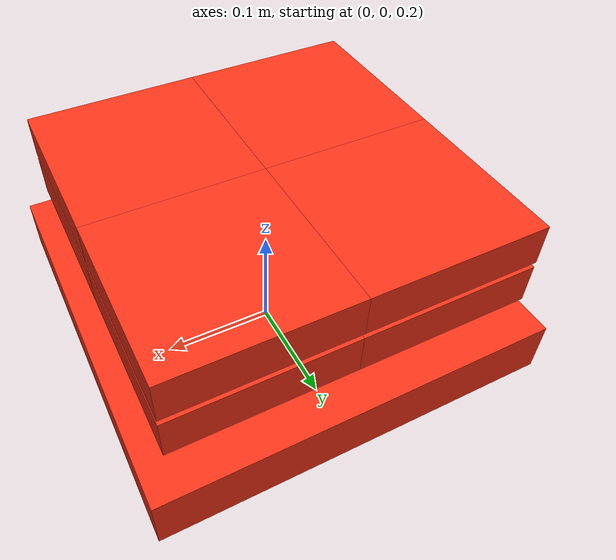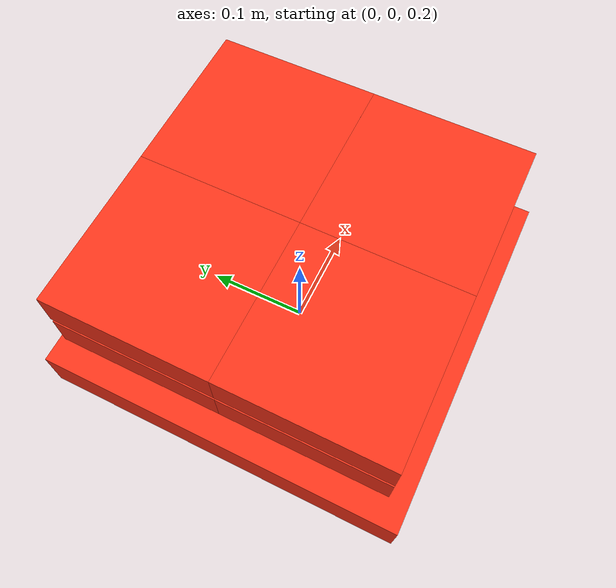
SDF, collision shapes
<?xml version="1.0" encoding="UTF-8"?>
<sdf version='1.9'>
  <model name='kopis_x8'>
    <include merge='true'>
      <uri>model://kopis_x8_base</uri>
    </include>
    <!-- 0: FR upper -->
    <plugin filename="gz-sim-multicopter-motor-model-system" name="gz::sim::systems::MulticopterMotorModel">
      <jointName>rotor_5_joint</jointName>
      <linkName>rotor_5</linkName>
      <turningDirection>ccw</turningDirection>
      <timeConstantUp>0.0125</timeConstantUp>
      <timeConstantDown>0.025</timeConstantDown>
      <maxRotVelocity>1000.0</maxRotVelocity>
      <motorConstant>8.54858e-06</motorConstant>
      <momentConstant>0.016</momentConstant>
      <commandSubTopic>command/motor_speed</commandSubTopic>
      <motorNumber>0</motorNumber>
      <rotorDragCoefficient>8.06428e-05</rotorDragCoefficient>
      <rollingMomentCoefficient>1e-06</rollingMomentCoefficient>
      <rotorVelocitySlowdownSim>10</rotorVelocitySlowdownSim>
      <motorType>velocity</motorType>
    </plugin>
    <!-- 1: FL upper -->
    <plugin filename="gz-sim-multicopter-motor-model-system" name="gz::sim::systems::MulticopterMotorModel">
      <jointName>rotor_1_joint</jointName>
      <linkName>rotor_1</linkName>
      <turningDirection>cw</turningDirection>
      <timeConstantUp>0.0125</timeConstantUp>
      <timeConstantDown>0.025</timeConstantDown>
      <maxRotVelocity>1000.0</maxRotVelocity>
      <motorConstant>8.54858e-06</motorConstant>
      <momentConstant>0.016</momentConstant>
      <commandSubTopic>command/motor_speed</commandSubTopic>
      <motorNumber>1</motorNumber>
      <rotorDragCoefficient>8.06428e-05</rotorDragCoefficient>
      <rollingMomentCoefficient>1e-06</rollingMomentCoefficient>
      <rotorVelocitySlowdownSim>10</rotorVelocitySlowdownSim>
      <motorType>velocity</motorType>
    </plugin>
    <!-- 2: BL upper -->
    <plugin filename="gz-sim-multicopter-motor-model-system" name="gz::sim::systems::MulticopterMotorModel">
      <jointName>rotor_3_joint</jointName>
      <linkName>rotor_3</linkName>
      <turningDirection>ccw</turningDirection>
      <timeConstantUp>0.0125</timeConstantUp>
      <timeConstantDown>0.025</timeConstantDown>
      <maxRotVelocity>1000.0</maxRotVelocity>
      <motorConstant>8.54858e-06</motorConstant>
      <momentConstant>0.016</momentConstant>
      <commandSubTopic>command/motor_speed</commandSubTopic>
      <motorNumber>2</motorNumber>
      <rotorDragCoefficient>8.06428e-05</rotorDragCoefficient>
      <rollingMomentCoefficient>1e-06</rollingMomentCoefficient>
      <rotorVelocitySlowdownSim>10</rotorVelocitySlowdownSim>
      <motorType>velocity</motorType>
    </plugin>
    <!-- 3: BR upper -->
    <plugin filename="gz-sim-multicopter-motor-model-system" name="gz::sim::systems::MulticopterMotorModel">
      <jointName>rotor_7_joint</jointName>
      <linkName>rotor_7</linkName>
      <turningDirection>cw</turningDirection>
      <timeConstantUp>0.0125</timeConstantUp>
      <timeConstantDown>0.025</timeConstantDown>
      <maxRotVelocity>1000.0</maxRotVelocity>
      <motorConstant>8.54858e-06</motorConstant>
      <momentConstant>0.016</momentConstant>
      <commandSubTopic>command/motor_speed</commandSubTopic>
      <motorNumber>3</motorNumber>
      <rotorDragCoefficient>8.06428e-05</rotorDragCoefficient>
      <rollingMomentCoefficient>1e-06</rollingMomentCoefficient>
      <rotorVelocitySlowdownSim>10</rotorVelocitySlowdownSim>
      <motorType>velocity</motorType>
    </plugin>
    <!-- 4: FL lower -->
    <plugin filename="gz-sim-multicopter-motor-model-system" name="gz::sim::systems::MulticopterMotorModel">
      <jointName>rotor_0_joint</jointName>
      <linkName>rotor_0</linkName>
      <turningDirection>ccw</turningDirection>
      <timeConstantUp>0.0125</timeConstantUp>
      <timeConstantDown>0.025</timeConstantDown>
      <maxRotVelocity>1000.0</maxRotVelocity>
      <motorConstant>8.54858e-06</motorConstant>
      <momentConstant>0.016</momentConstant>
      <commandSubTopic>command/motor_speed</commandSubTopic>
      <motorNumber>4</motorNumber>
      <rotorDragCoefficient>8.06428e-05</rotorDragCoefficient>
      <rollingMomentCoefficient>1e-06</rollingMomentCoefficient>
      <rotorVelocitySlowdownSim>10</rotorVelocitySlowdownSim>
      <motorType>velocity</motorType>
    </plugin>
    <!-- 5: FR lower -->
    <plugin filename="gz-sim-multicopter-motor-model-system" name="gz::sim::systems::MulticopterMotorModel">
      <jointName>rotor_4_joint</jointName>
      <linkName>rotor_4</linkName>
      <turningDirection>cw</turningDirection>
      <timeConstantUp>0.0125</timeConstantUp>
      <timeConstantDown>0.025</timeConstantDown>
      <maxRotVelocity>1000.0</maxRotVelocity>
      <motorConstant>8.54858e-06</motorConstant>
      <momentConstant>0.016</momentConstant>
      <commandSubTopic>command/motor_speed</commandSubTopic>
      <motorNumber>5</motorNumber>
      <rotorDragCoefficient>8.06428e-05</rotorDragCoefficient>
      <rollingMomentCoefficient>1e-06</rollingMomentCoefficient>
      <rotorVelocitySlowdownSim>10</rotorVelocitySlowdownSim>
      <motorType>velocity</motorType>
    </plugin>
    <!-- 6: BR lower -->
    <plugin filename="gz-sim-multicopter-motor-model-system" name="gz::sim::systems::MulticopterMotorModel">
      <jointName>rotor_6_joint</jointName>
      <linkName>rotor_6</linkName>
      <turningDirection>ccw</turningDirection>
      <timeConstantUp>0.0125</timeConstantUp>
      <timeConstantDown>0.025</timeConstantDown>
      <maxRotVelocity>1000.0</maxRotVelocity>
      <motorConstant>8.54858e-06</motorConstant>
      <momentConstant>0.016</momentConstant>
      <commandSubTopic>command/motor_speed</commandSubTopic>
      <motorNumber>6</motorNumber>
      <rotorDragCoefficient>8.06428e-05</rotorDragCoefficient>
      <rollingMomentCoefficient>1e-06</rollingMomentCoefficient>
      <rotorVelocitySlowdownSim>10</rotorVelocitySlowdownSim>
      <motorType>velocity</motorType>
    </plugin>
    <!-- 7: BL lower -->
    <plugin filename="gz-sim-multicopter-motor-model-system" name="gz::sim::systems::MulticopterMotorModel">
      <jointName>rotor_2_joint</jointName>
      <linkName>rotor_2</linkName>
      <turningDirection>cw</turningDirection>
      <timeConstantUp>0.0125</timeConstantUp>
      <timeConstantDown>0.025</timeConstantDown>
      <maxRotVelocity>1000.0</maxRotVelocity>
      <motorConstant>8.54858e-06</motorConstant>
      <momentConstant>0.016</momentConstant>
      <commandSubTopic>command/motor_speed</commandSubTopic>
      <motorNumber>7</motorNumber>
      <rotorDragCoefficient>8.06428e-05</rotorDragCoefficient>
      <rollingMomentCoefficient>1e-06</rollingMomentCoefficient>
      <rotorVelocitySlowdownSim>10</rotorVelocitySlowdownSim>
      <motorType>velocity</motorType>
    </plugin>
  </model>
</sdf>

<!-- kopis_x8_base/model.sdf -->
<sdf version='1.9'>
  <model name='kopis_x8_base'>
    <pose>0 0 .24 0 0 0</pose>
    <self_collide>false</self_collide>
    <static>false</static>
    <link name="base_link">
      <inertial>
        <mass>2.8</mass>
        <inertia>
          <ixx>0.03</ixx>
          <ixy>0</ixy>
          <ixz>0</ixz>
          <iyy>0.03</iyy>
          <iyz>0</iyz>
          <izz>0.055</izz>
        </inertia>
      </inertial>
      <gravity>true</gravity>
      <velocity_decay/>
      <collision name="base_link_collision">
        <pose>0 0 .007 0 0 0</pose>
        <geometry>
          <box>
            <size>0.35 0.35 0.05</size>
          </box>
        </geometry>
        <surface>
          <contact>
            <ode>
              <min_depth>0.001</min_depth>
              <max_vel>0</max_vel>
            </ode>
          </contact>
          <friction>
            <ode/>
          </friction>
        </surface>
      </collision>
      <!-- Visual only: front (nose) marker. Body FLU: +X = forward -->
      <visual name="nose_marker">
        <pose>0.09 0 0.04 0 0 0</pose>
        <geometry>
          <box>
            <size>0.025 0.04 0.008</size>
          </box>
        </geometry>
        <material>
          <diffuse>1 0.2 0.1</diffuse>
          <specular>0.3 0.1 0.1</specular>
          <emissive>0.4 0 0</emissive>
        </material>
      </visual>
      <!-- Ducts fixed to body. Z = duct center; prop at same Z (duct h=37.6mm, 1단 center 0.0788, 2단 center 0.1214 = 1단 top 0.0976 + 5mm gap + half duct) -->
      <visual name="duct_0_visual">
        <pose>0.078 0.078 0.0788 3.14159 0 0</pose>
        <geometry>
          <mesh>
            <scale>0.001 0.001 0.001</scale>
            <uri>model://kopis_x8_base/meshes/KopisX8_Cinelifter_5in_Duct.stl</uri>
          </mesh>
        </geometry>
        <material>
          <diffuse>0.45 0.45 0.5</diffuse>
          <specular>0.2 0.2 0.2</specular>
        </material>
      </visual>
      <collision name="duct_0_collision">
        <pose>0.078 0.078 0.0788 3.14159 0 0</pose>
        <geometry><box><size>0.156 0.156 0.0376</size></box></geometry>
        <surface><contact><ode><min_depth>0.001</min_depth><max_vel>0</max_vel></ode></contact><friction><ode/></friction></surface>
      </collision>
      <visual name="duct_1_visual">
        <pose>0.078 0.078 0.1214 3.14159 0 0</pose>
        <geometry>
          <mesh>
            <scale>0.001 0.001 0.001</scale>
            <uri>model://kopis_x8_base/meshes/KopisX8_Cinelifter_5in_Duct.stl</uri>
          </mesh>
        </geometry>
        <material>
          <diffuse>0.45 0.45 0.5</diffuse>
          <specular>0.2 0.2 0.2</specular>
        </material>
      </visual>
      <collision name="duct_1_collision">
        <pose>0.078 0.078 0.1214 3.14159 0 0</pose>
        <geometry><box><size>0.156 0.156 0.0376</size></box></geometry>
        <surface><contact><ode><min_depth>0.001</min_depth><max_vel>0</max_vel></ode></contact><friction><ode/></friction></surface>
      </collision>
      <visual name="duct_2_visual">
        <pose>-0.078 0.078 0.0788 3.14159 0 0</pose>
        <geometry>
          <mesh>
            <scale>0.001 0.001 0.001</scale>
            <uri>model://kopis_x8_base/meshes/KopisX8_Cinelifter_5in_Duct.stl</uri>
          </mesh>
        </geometry>
        <material>
          <diffuse>0.45 0.45 0.5</diffuse>
          <specular>0.2 0.2 0.2</specular>
        </material>
      </visual>
      <collision name="duct_2_collision">
        <pose>-0.078 0.078 0.0788 3.14159 0 0</pose>
        <geometry><box><size>0.156 0.156 0.0376</size></box></geometry>
        <surface><contact><ode><min_depth>0.001</min_depth><max_vel>0</max_vel></ode></contact><friction><ode/></friction></surface>
      </collision>
      <visual name="duct_3_visual">
        <pose>-0.078 0.078 0.1214 3.14159 0 0</pose>
        <geometry>
          <mesh>
            <scale>0.001 0.001 0.001</scale>
            <uri>model://kopis_x8_base/meshes/KopisX8_Cinelifter_5in_Duct.stl</uri>
          </mesh>
        </geometry>
        <material>
          <diffuse>0.45 0.45 0.5</diffuse>
          <specular>0.2 0.2 0.2</specular>
        </material>
      </visual>
      <collision name="duct_3_collision">
        <pose>-0.078 0.078 0.1214 3.14159 0 0</pose>
        <geometry><box><size>0.156 0.156 0.0376</size></box></geometry>
        <surface><contact><ode><min_depth>0.001</min_depth><max_vel>0</max_vel></ode></contact><friction><ode/></friction></surface>
      </collision>
      <visual name="duct_4_visual">
        <pose>0.078 -0.078 0.0788 3.14159 0 0</pose>
        <geometry>
          <mesh>
            <scale>0.001 0.001 0.001</scale>
            <uri>model://kopis_x8_base/meshes/KopisX8_Cinelifter_5in_Duct.stl</uri>
          </mesh>
        </geometry>
        <material>
          <diffuse>0.45 0.45 0.5</diffuse>
          <specular>0.2 0.2 0.2</specular>
        </material>
      </visual>
      <collision name="duct_4_collision">
        <pose>0.078 -0.078 0.0788 3.14159 0 0</pose>
        <geometry><box><size>0.156 0.156 0.0376</size></box></geometry>
        <surface><contact><ode><min_depth>0.001</min_depth><max_vel>0</max_vel></ode></contact><friction><ode/></friction></surface>
      </collision>
      <visual name="duct_5_visual">
        <pose>0.078 -0.078 0.1214 3.14159 0 0</pose>
        <geometry>
          <mesh>
            <scale>0.001 0.001 0.001</scale>
            <uri>model://kopis_x8_base/meshes/KopisX8_Cinelifter_5in_Duct.stl</uri>
          </mesh>
        </geometry>
        <material>
          <diffuse>0.45 0.45 0.5</diffuse>
          <specular>0.2 0.2 0.2</specular>
        </material>
      </visual>
      <collision name="duct_5_collision">
        <pose>0.078 -0.078 0.1214 3.14159 0 0</pose>
        <geometry><box><size>0.156 0.156 0.0376</size></box></geometry>
        <surface><contact><ode><min_depth>0.001</min_depth><max_vel>0</max_vel></ode></contact><friction><ode/></friction></surface>
      </collision>
      <visual name="duct_6_visual">
        <pose>-0.078 -0.078 0.0788 3.14159 0 0</pose>
        <geometry>
          <mesh>
            <scale>0.001 0.001 0.001</scale>
            <uri>model://kopis_x8_base/meshes/KopisX8_Cinelifter_5in_Duct.stl</uri>
          </mesh>
        </geometry>
        <material>
          <diffuse>0.45 0.45 0.5</diffuse>
          <specular>0.2 0.2 0.2</specular>
        </material>
      </visual>
      <collision name="duct_6_collision">
        <pose>-0.078 -0.078 0.0788 3.14159 0 0</pose>
        <geometry><box><size>0.156 0.156 0.0376</size></box></geometry>
        <surface><contact><ode><min_depth>0.001</min_depth><max_vel>0</max_vel></ode></contact><friction><ode/></friction></surface>
      </collision>
      <visual name="duct_7_visual">
        <pose>-0.078 -0.078 0.1214 3.14159 0 0</pose>
        <geometry>
          <mesh>
            <scale>0.001 0.001 0.001</scale>
            <uri>model://kopis_x8_base/meshes/KopisX8_Cinelifter_5in_Duct.stl</uri>
          </mesh>
        </geometry>
        <material>
          <diffuse>0.45 0.45 0.5</diffuse>
          <specular>0.2 0.2 0.2</specular>
        </material>
      </visual>
      <collision name="duct_7_collision">
        <pose>-0.078 -0.078 0.1214 3.14159 0 0</pose>
        <geometry><box><size>0.156 0.156 0.0376</size></box></geometry>
        <surface><contact><ode><min_depth>0.001</min_depth><max_vel>0</max_vel></ode></contact><friction><ode/></friction></surface>
      </collision>
      <sensor name="air_pressure_sensor" type="air_pressure">
        <always_on>1</always_on>
        <update_rate>50</update_rate>
        <air_pressure>
          <pressure>
            <noise type="gaussian">
              <mean>0</mean>
              <stddev>3</stddev>
            </noise>
          </pressure>
        </air_pressure>
      </sensor>
      <sensor name="magnetometer_sensor" type="magnetometer">
        <always_on>1</always_on>
        <update_rate>100</update_rate>
        <magnetometer>
          <x>
            <noise type="gaussian">
              <stddev>0.0001</stddev>
            </noise>
          </x>
          <y>
            <noise type="gaussian">
              <stddev>0.0001</stddev>
            </noise>
          </y>
          <z>
            <noise type="gaussian">
              <stddev>0.0001</stddev>
            </noise>
          </z>
        </magnetometer>
      </sensor>
      <sensor name="imu_sensor" type="imu">
        <always_on>1</always_on>
        <update_rate>250</update_rate>
        <imu>
          <angular_velocity>
            <x>
              <noise type="gaussian">
                <mean>0.0</mean>
                <stddev>0.0008726646</stddev>
              </noise>
            </x>
            <y>
              <noise type="gaussian">
                <mean>0.0</mean>
                <stddev>0.0008726646</stddev>
              </noise>
            </y>
            <z>
              <noise type="gaussian">
                <mean>0.0</mean>
                <stddev>0.0008726646</stddev>
              </noise>
            </z>
          </angular_velocity>
          <linear_acceleration>
            <x>
              <noise type="gaussian">
                <mean>0.0</mean>
                <stddev>0.00637</stddev>
              </noise>
            </x>
            <y>
              <noise type="gaussian">
                <mean>0.0</mean>
                <stddev>0.00637</stddev>
              </noise>
            </y>
            <z>
              <noise type="gaussian">
                <mean>0.0</mean>
                <stddev>0.00686</stddev>
              </noise>
            </z>
          </linear_acceleration>
        </imu>
      </sensor>
      <sensor name="navsat_sensor" type="navsat">
        <always_on>1</always_on>
        <update_rate>30</update_rate>
      </sensor>
    </link>
    <!-- Quad X 4 arms, 2 rotors per arm (2-tier). Body FLU: X fwd, Y left. -->
    <!-- PX4 CA_ROTOR / gz motorNumber order = 12001_octo_cox (see model://kopis_x8): 0=FR↑ 1=FL↑ 2=BL↑ 3=BR↑ 4=FL↓ 5=FR↓ 6=BR↓ 7=BL↓ (FRD corners). -->
    <!-- Arm 0 front-left -->
    <link name="rotor_0">
      <gravity>true</gravity>
      <self_collide>false</self_collide>
      <velocity_decay/>
      <pose>0.078 0.078 0.0788 0 0 0</pose>
      <inertial>
        <mass>0.016076923076923075</mass>
        <inertia>
          <ixx>3.8464910483993325e-07</ixx>
          <ixy>0</ixy>
          <ixz>0</ixz>
          <iyy>2.6115851691700804e-05</iyy>
          <iyz>0</iyz>
          <izz>2.649858234714004e-05</izz>
        </inertia>
      </inertial>
      <visual name="rotor_0_visual">
        <pose>0 0 0 -1.5708 0 0</pose>
        <geometry>
          <mesh>
            <scale>0.001 0.001 0.001</scale>
            <uri>model://kopis_x8_base/meshes/Propeller_5_inch.stl</uri>
          </mesh>
        </geometry>
        <material>
          <script>
            <name>Gazebo/DarkGrey</name>
            <uri>file://media/materials/scripts/gazebo.material</uri>
          </script>
        </material>
      </visual>
      <collision name="rotor_0_collision">
        <pose>0 0 0 0 0 0</pose>
        <geometry>
          <box>
            <size>0.127 0.02 0.001</size>
          </box>
        </geometry>
        <surface>
          <contact><ode><min_depth>0.001</min_depth><max_vel>0</max_vel></ode></contact>
          <friction><ode/></friction>
        </surface>
      </collision>
    </link>
    <joint name="rotor_0_joint" type="revolute">
      <parent>base_link</parent>
      <child>rotor_0</child>
      <axis>
        <xyz>0 0 1</xyz>
        <limit><lower>-1e+16</lower><upper>1e+16</upper></limit>
        <dynamics><spring_reference>0</spring_reference><spring_stiffness>0</spring_stiffness></dynamics>
      </axis>
    </joint>
    <!-- Arm 0 front-left, 2nd tier -->
    <link name="rotor_1">
      <gravity>true</gravity>
      <self_collide>false</self_collide>
      <velocity_decay/>
      <pose>0.078 0.078 0.1214 0 0 0</pose>
      <inertial>
        <mass>0.016076923076923075</mass>
        <inertia>
          <ixx>3.8464910483993325e-07</ixx>
          <ixy>0</ixy>
          <ixz>0</ixz>
          <iyy>2.6115851691700804e-05</iyy>
          <iyz>0</iyz>
          <izz>2.649858234714004e-05</izz>
        </inertia>
      </inertial>
      <visual name="rotor_1_visual">
        <pose>0 0 0 -1.5708 0 0</pose>
        <geometry>
          <mesh>
            <scale>0.001 0.001 0.001</scale>
            <uri>model://kopis_x8_base/meshes/Propeller_5_inch.stl</uri>
          </mesh>
        </geometry>
        <material>
          <script><name>Gazebo/DarkGrey</name><uri>file://media/materials/scripts/gazebo.material</uri></script>
        </material>
      </visual>
      <collision name="rotor_1_collision">
        <pose>0 0 0 0 0 0</pose>
        <geometry><box><size>0.127 0.02 0.001</size></box></geometry>
        <surface><contact><ode><min_depth>0.001</min_depth><max_vel>0</max_vel></ode></contact><friction><ode/></friction></surface>
      </collision>
    </link>
    <joint name="rotor_1_joint" type="revolute">
      <parent>base_link</parent>
      <child>rotor_1</child>
      <axis><xyz>0 0 1</xyz><limit><lower>-1e+16</lower><upper>1e+16</upper></limit><dynamics><spring_reference>0</spring_reference><spring_stiffness>0</spring_stiffness></dynamics></axis>
    </joint>
    <!-- Arm 1 front-right -->
    <link name="rotor_2">
      <gravity>true</gravity>
      <self_collide>false</self_collide>
      <velocity_decay/>
      <pose>-0.078 0.078 0.0788 0 0 0</pose>
      <inertial>
        <mass>0.016076923076923075</mass>
        <inertia>
          <ixx>3.8464910483993325e-07</ixx>
          <ixy>0</ixy>
          <ixz>0</ixz>
          <iyy>2.6115851691700804e-05</iyy>
          <iyz>0</iyz>
          <izz>2.649858234714004e-05</izz>
        </inertia>
      </inertial>
      <visual name="rotor_2_visual">
        <pose>0 0 0 -1.5708 0 0</pose>
        <geometry>
          <mesh>
            <scale>0.001 0.001 0.001</scale>
            <uri>model://kopis_x8_base/meshes/Propeller_5_inch.stl</uri>
          </mesh>
        </geometry>
        <material>
          <script><name>Gazebo/DarkGrey</name><uri>file://media/materials/scripts/gazebo.material</uri></script>
        </material>
      </visual>
      <collision name="rotor_2_collision">
        <pose>0 0 0 0 0 0</pose>
        <geometry><box><size>0.127 0.02 0.001</size></box></geometry>
        <surface><contact><ode><min_depth>0.001</min_depth><max_vel>0</max_vel></ode></contact><friction><ode/></friction></surface>
      </collision>
    </link>
    <joint name="rotor_2_joint" type="revolute">
      <parent>base_link</parent>
      <child>rotor_2</child>
      <axis><xyz>0 0 1</xyz><limit><lower>-1e+16</lower><upper>1e+16</upper></limit><dynamics><spring_reference>0</spring_reference><spring_stiffness>0</spring_stiffness></dynamics></axis>
    </joint>
    <!-- Arm 1 front-right, 2nd tier -->
    <link name="rotor_3">
      <gravity>true</gravity>
      <self_collide>false</self_collide>
      <velocity_decay/>
      <pose>-0.078 0.078 0.1214 0 0 0</pose>
      <inertial>
        <mass>0.016076923076923075</mass>
        <inertia>
          <ixx>3.8464910483993325e-07</ixx>
          <ixy>0</ixy>
          <ixz>0</ixz>
          <iyy>2.6115851691700804e-05</iyy>
          <iyz>0</iyz>
          <izz>2.649858234714004e-05</izz>
        </inertia>
      </inertial>
      <visual name="rotor_3_visual">
        <pose>0 0 0 -1.5708 0 0</pose>
        <geometry>
          <mesh>
            <scale>0.001 0.001 0.001</scale>
            <uri>model://kopis_x8_base/meshes/Propeller_5_inch.stl</uri>
          </mesh>
        </geometry>
        <material>
          <script><name>Gazebo/DarkGrey</name><uri>file://media/materials/scripts/gazebo.material</uri></script>
        </material>
      </visual>
      <collision name="rotor_3_collision">
        <pose>0 0 0 0 0 0</pose>
        <geometry><box><size>0.127 0.02 0.001</size></box></geometry>
        <surface><contact><ode><min_depth>0.001</min_depth><max_vel>0</max_vel></ode></contact><friction><ode/></friction></surface>
      </collision>
    </link>
    <joint name="rotor_3_joint" type="revolute">
      <parent>base_link</parent>
      <child>rotor_3</child>
      <axis><xyz>0 0 1</xyz><limit><lower>-1e+16</lower><upper>1e+16</upper></limit><dynamics><spring_reference>0</spring_reference><spring_stiffness>0</spring_stiffness></dynamics></axis>
    </joint>
    <!-- Arm 2 back-left -->
    <link name="rotor_4">
      <gravity>true</gravity>
      <self_collide>false</self_collide>
      <velocity_decay/>
      <pose>0.078 -0.078 0.0788 0 0 0</pose>
      <inertial>
        <mass>0.016076923076923075</mass>
        <inertia>
          <ixx>3.8464910483993325e-07</ixx>
          <ixy>0</ixy>
          <ixz>0</ixz>
          <iyy>2.6115851691700804e-05</iyy>
          <iyz>0</iyz>
          <izz>2.649858234714004e-05</izz>
        </inertia>
      </inertial>
      <visual name="rotor_4_visual">
        <pose>0 0 0 -1.5708 0 0</pose>
        <geometry>
          <mesh>
            <scale>0.001 0.001 0.001</scale>
            <uri>model://kopis_x8_base/meshes/Propeller_5_inch.stl</uri>
          </mesh>
        </geometry>
        <material>
          <script><name>Gazebo/DarkGrey</name><uri>file://media/materials/scripts/gazebo.material</uri></script>
        </material>
      </visual>
      <collision name="rotor_4_collision">
        <pose>0 0 0 0 0 0</pose>
        <geometry><box><size>0.127 0.02 0.001</size></box></geometry>
        <surface><contact><ode><min_depth>0.001</min_depth><max_vel>0</max_vel></ode></contact><friction><ode/></friction></surface>
      </collision>
    </link>
    <joint name="rotor_4_joint" type="revolute">
      <parent>base_link</parent>
      <child>rotor_4</child>
      <axis><xyz>0 0 1</xyz><limit><lower>-1e+16</lower><upper>1e+16</upper></limit><dynamics><spring_reference>0</spring_reference><spring_stiffness>0</spring_stiffness></dynamics></axis>
    </joint>
    <!-- Arm 2 back-left, 2nd tier -->
    <link name="rotor_5">
      <gravity>true</gravity>
      <self_collide>false</self_collide>
      <velocity_decay/>
      <pose>0.078 -0.078 0.1214 0 0 0</pose>
      <inertial>
        <mass>0.016076923076923075</mass>
        <inertia>
          <ixx>3.8464910483993325e-07</ixx>
          <ixy>0</ixy>
          <ixz>0</ixz>
          <iyy>2.6115851691700804e-05</iyy>
          <iyz>0</iyz>
          <izz>2.649858234714004e-05</izz>
        </inertia>
      </inertial>
      <visual name="rotor_5_visual">
        <pose>0 0 0 -1.5708 0 0</pose>
        <geometry>
          <mesh>
            <scale>0.001 0.001 0.001</scale>
            <uri>model://kopis_x8_base/meshes/Propeller_5_inch.stl</uri>
          </mesh>
        </geometry>
        <material>
          <script><name>Gazebo/DarkGrey</name><uri>file://media/materials/scripts/gazebo.material</uri></script>
        </material>
      </visual>
      <collision name="rotor_5_collision">
        <pose>0 0 0 0 0 0</pose>
        <geometry><box><size>0.127 0.02 0.001</size></box></geometry>
        <surface><contact><ode><min_depth>0.001</min_depth><max_vel>0</max_vel></ode></contact><friction><ode/></friction></surface>
      </collision>
    </link>
    <joint name="rotor_5_joint" type="revolute">
      <parent>base_link</parent>
      <child>rotor_5</child>
      <axis><xyz>0 0 1</xyz><limit><lower>-1e+16</lower><upper>1e+16</upper></limit><dynamics><spring_reference>0</spring_reference><spring_stiffness>0</spring_stiffness></dynamics></axis>
    </joint>
    <!-- Arm 3 back-right -->
    <link name="rotor_6">
      <gravity>true</gravity>
      <self_collide>false</self_collide>
      <velocity_decay/>
      <pose>-0.078 -0.078 0.0788 0 0 0</pose>
      <inertial>
        <mass>0.016076923076923075</mass>
        <inertia>
          <ixx>3.8464910483993325e-07</ixx>
          <ixy>0</ixy>
          <ixz>0</ixz>
          <iyy>2.6115851691700804e-05</iyy>
          <iyz>0</iyz>
          <izz>2.649858234714004e-05</izz>
        </inertia>
      </inertial>
      <visual name="rotor_6_visual">
        <pose>0 0 0 -1.5708 0 0</pose>
        <geometry>
          <mesh>
            <scale>0.001 0.001 0.001</scale>
            <uri>model://kopis_x8_base/meshes/Propeller_5_inch.stl</uri>
          </mesh>
        </geometry>
        <material>
          <script><name>Gazebo/DarkGrey</name><uri>file://media/materials/scripts/gazebo.material</uri></script>
        </material>
      </visual>
      <collision name="rotor_6_collision">
        <pose>0 0 0 0 0 0</pose>
        <geometry><box><size>0.127 0.02 0.001</size></box></geometry>
        <surface><contact><ode><min_depth>0.001</min_depth><max_vel>0</max_vel></ode></contact><friction><ode/></friction></surface>
      </collision>
    </link>
    <joint name="rotor_6_joint" type="revolute">
      <parent>base_link</parent>
      <child>rotor_6</child>
      <axis><xyz>0 0 1</xyz><limit><lower>-1e+16</lower><upper>1e+16</upper></limit><dynamics><spring_reference>0</spring_reference><spring_stiffness>0</spring_stiffness></dynamics></axis>
    </joint>
    <!-- Arm 3 back-right, 2nd tier -->
    <link name="rotor_7">
      <gravity>true</gravity>
      <self_collide>false</self_collide>
      <velocity_decay/>
      <pose>-0.078 -0.078 0.1214 0 0 0</pose>
      <inertial>
        <mass>0.016076923076923075</mass>
        <inertia>
          <ixx>3.8464910483993325e-07</ixx>
          <ixy>0</ixy>
          <ixz>0</ixz>
          <iyy>2.6115851691700804e-05</iyy>
          <iyz>0</iyz>
          <izz>2.649858234714004e-05</izz>
        </inertia>
      </inertial>
      <visual name="rotor_7_visual">
        <pose>0 0 0 -1.5708 0 0</pose>
        <geometry>
          <mesh>
            <scale>0.001 0.001 0.001</scale>
            <uri>model://kopis_x8_base/meshes/Propeller_5_inch.stl</uri>
          </mesh>
        </geometry>
        <material>
          <script><name>Gazebo/DarkGrey</name><uri>file://media/materials/scripts/gazebo.material</uri></script>
        </material>
      </visual>
      <collision name="rotor_7_collision">
        <pose>0 0 0 0 0 0</pose>
        <geometry><box><size>0.127 0.02 0.001</size></box></geometry>
        <surface><contact><ode><min_depth>0.001</min_depth><max_vel>0</max_vel></ode></contact><friction><ode/></friction></surface>
      </collision>
    </link>
    <joint name="rotor_7_joint" type="revolute">
      <parent>base_link</parent>
      <child>rotor_7</child>
      <axis><xyz>0 0 1</xyz><limit><lower>-1e+16</lower><upper>1e+16</upper></limit><dynamics><spring_reference>0</spring_reference><spring_stiffness>0</spring_stiffness></dynamics></axis>
    </joint>
  </model>
</sdf>
